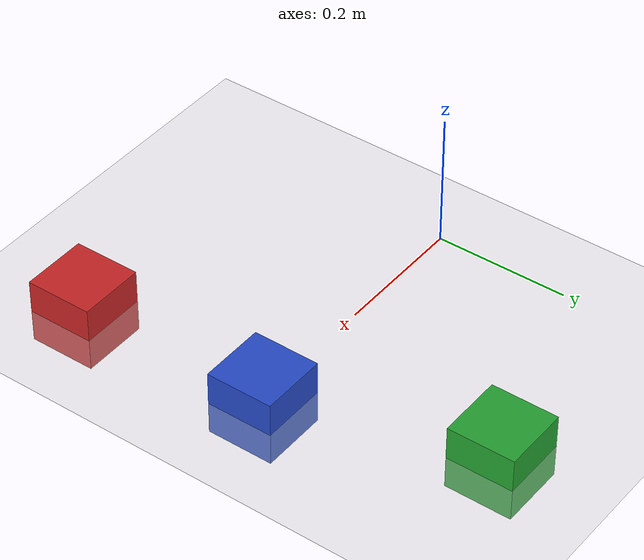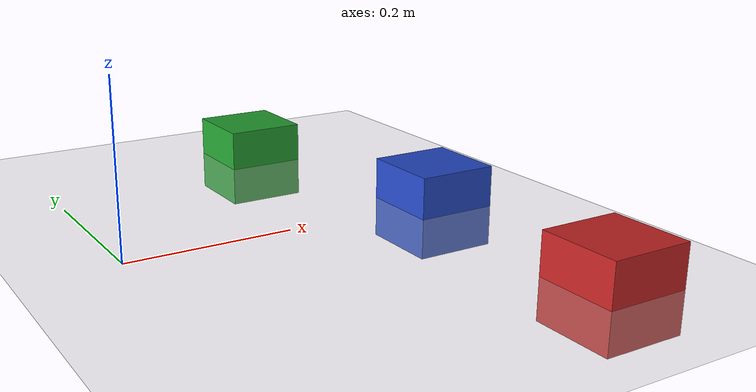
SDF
<?xml version="1.0" ?>
<sdf version="1.4">
  <world name="default">
    <include>
      <uri>model://ground_plane</uri>
    </include>

    <model name="my_model_1">
	  <pose>0.3 0.3 0 0 0 0</pose>
	  <static>false</static>
	    <link name="link">
	      <inertial>
		<mass>1.0</mass>
		<inertia>
		  <ixx>0.083</ixx>
		  <ixy>0.0</ixy>
		  <ixz>0.0</ixz>
		  <iyy>0.083</iyy>
		  <iyz>0.0</iyz>
		  <izz>0.083</izz>
		</inertia>
	      </inertial>
	      <collision name="collision">
		<geometry>
		  <box>
		    <size>0.1 0.1 0.1</size>
		  </box>
		</geometry>
	      </collision>
	      <visual name="visual">
		<geometry>
		  <box>
		    <size>0.1 0.1 0.1</size>
		  </box>
		</geometry>
		<material>
	          <script>
	            <uri>file://media/materials/scripts/gazebo.material</uri>
	            <name>Gazebo/Green</name>
	          </script>
        </material>
	      </visual>
	    </link>
    </model>

    <model name="my_model_2">
	  <pose>0.4 -0.3 0 0 0 0</pose>
	  <static>false</static>
	    <link name="link">
	      <inertial>
		<mass>1.0</mass>
		<inertia>
		  <ixx>0.083</ixx>
		  <ixy>0.0</ixy>
		  <ixz>0.0</ixz>
		  <iyy>0.083</iyy>
		  <iyz>0.0</iyz>
		  <izz>0.083</izz>
		</inertia>
	      </inertial>
	      <collision name="collision">
		<geometry>
		  <box>
		    <size>0.1 0.1 0.1</size>
		  </box>
		</geometry>
	      </collision>
	      <visual name="visual">
		<geometry>
		  <box>
		    <size>0.1 0.1 0.1</size>
		  </box>
		</geometry>
		<material>
	          <script>
	            <uri>file://media/materials/scripts/gazebo.material</uri>
	            <name>Gazebo/Red</name>
	          </script>
        </material>
	      </visual>
	    </link>
    </model>

    <model name="my_model_3">
	  <pose>0.4 0.0 0 0 0 0</pose>
	  <static>false</static>
	    <link name="link">
	      <inertial>
		<mass>1.0</mass>
		<inertia>
		  <ixx>0.083</ixx>
		  <ixy>0.0</ixy>
		  <ixz>0.0</ixz>
		  <iyy>0.083</iyy>
		  <iyz>0.0</iyz>
		  <izz>0.083</izz>
		</inertia>
	      </inertial>
	      <collision name="collision">
		<geometry>
		  <box>
		    <size>0.1 0.1 0.1</size>
		  </box>
		</geometry>
	      </collision>
	      <visual name="visual">
		<geometry>
		  <box>
		    <size>0.1 0.1 0.1</size>
		  </box>
		</geometry>
		<material>
	          <script>
	            <uri>file://media/materials/scripts/gazebo.material</uri>
	            <name>Gazebo/Blue</name>
	          </script>
        </material>
	      </visual>
	    </link>
    </model>

    <include>
      <uri>model://sun</uri>
    </include>
    <physics type="ode">
      <real_time_update_rate>1000.0</real_time_update_rate>
      <gravity>
	0.0 0.0 -9.81
      </gravity>
    </physics>
  </world>
</sdf>
